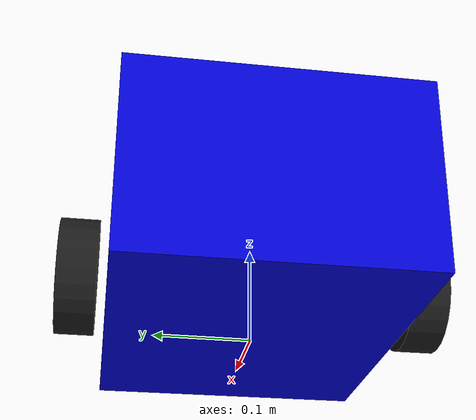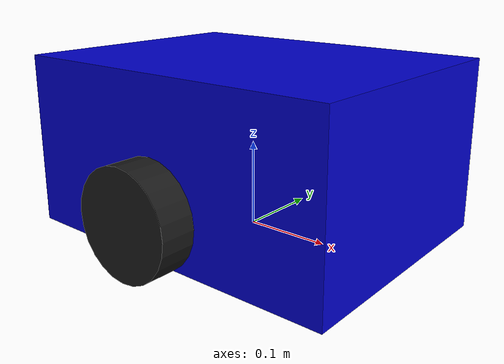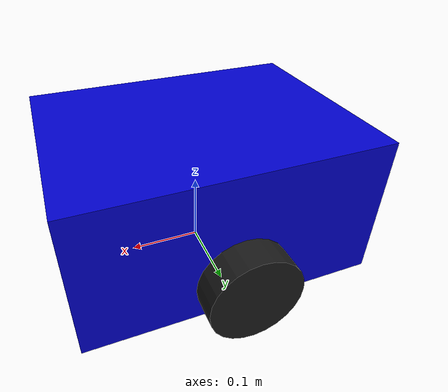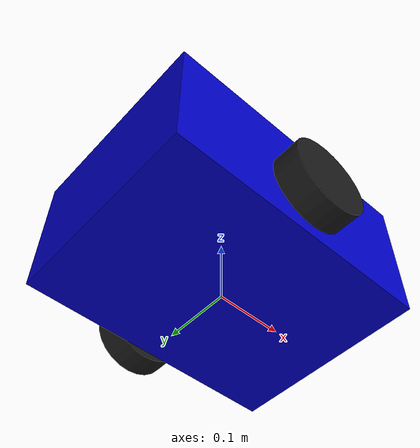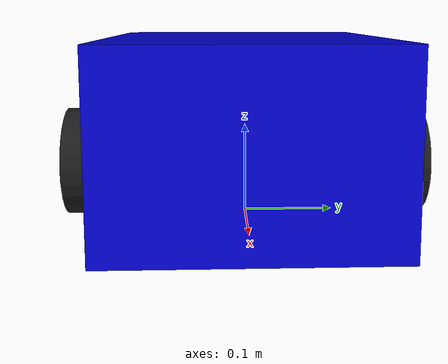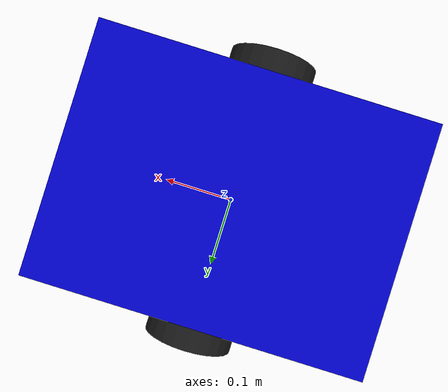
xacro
<?xml version="1.0"?>
<robot xmlns:xacro="http://www.ros.org/wiki/xacro" name="diff_drive_robot">

  <material name="blue">
    <color rgba="0.0 0.0 0.8 1.0"/>
  </material>
  <material name="black">
    <color rgba="0.1 0.1 0.1 1.0"/>
  </material>
  <material name="grey">
    <color rgba="0.6 0.6 0.6 1.0"/>
  </material>

  <!-- 地面投影参考系 -->
  <link name="base_footprint"/>

  <!-- 车体 -->
  <link name="base_link">
    <visual>
      <geometry><box size="0.4 0.3 0.2"/></geometry>
      <material name="blue"/>
    </visual>
    <collision>
      <geometry><box size="0.4 0.3 0.2"/></geometry>
    </collision>
    <inertial>
      <mass value="2.0"/>
      <origin xyz="0 0 0"/>
      <inertia ixx="0.0217" ixy="0" ixz="0" iyy="0.0333" iyz="0" izz="0.0417"/>
    </inertial>
  </link>

  <joint name="base_joint" type="fixed">
    <parent link="base_footprint"/>
    <child link="base_link"/>
    <origin xyz="0 0 0.1"/>
  </joint>

  <!-- 左轮（绕 +Y 转动） -->
  <link name="left_wheel">
    <visual>
      <geometry><cylinder radius="0.06" length="0.04"/></geometry>
      <material name="black"/>
    </visual>
    <collision>
      <geometry><cylinder radius="0.06" length="0.04"/></geometry>
    </collision>
    <inertial>
      <mass value="0.5"/>
      <origin xyz="0 0 0"/>
      <inertia ixx="0.000517" ixy="0" ixz="0" iyy="0.0009" iyz="0" izz="0.000517"/>
    </inertial>
  </link>

  <joint name="left_wheel_joint" type="continuous">
    <parent link="base_link"/>
    <child link="left_wheel"/>
    <origin xyz="0 0.18 -0.04" rpy="-1.5708 0 0"/>
    <axis xyz="0 0 1"/>
  </joint>

  <!-- 右轮（绕 +Y 转动） -->
  <link name="right_wheel">
    <visual>
      <geometry><cylinder radius="0.06" length="0.04"/></geometry>
      <material name="black"/>
    </visual>
    <collision>
      <geometry><cylinder radius="0.06" length="0.04"/></geometry>
    </collision>
    <inertial>
      <mass value="0.5"/>
      <origin xyz="0 0 0"/>
      <inertia ixx="0.000517" ixy="0" ixz="0" iyy="0.0009" iyz="0" izz="0.000517"/>
    </inertial>
  </link>

  <joint name="right_wheel_joint" type="continuous">
    <parent link="base_link"/>
    <child link="right_wheel"/>
    <origin xyz="0 -0.18 -0.04" rpy="-1.5708 0 0"/>
    <axis xyz="0 0 1"/>
  </joint>

  <!-- 万向支撑轮 -->
  <link name="caster">
    <visual>
      <geometry><sphere radius="0.03"/></geometry>
      <material name="grey"/>
    </visual>
    <collision>
      <geometry><sphere radius="0.03"/></geometry>
    </collision>
    <inertial>
      <mass value="0.05"/>
      <origin xyz="0 0 0"/>
      <inertia ixx="0.000018" ixy="0" ixz="0" iyy="0.000018" iyz="0" izz="0.000018"/>
    </inertial>
  </link>

  <joint name="caster_joint" type="fixed">
    <parent link="base_link"/>
    <child link="caster"/>
    <origin xyz="0.14 0 -0.07"/>
  </joint>

  <!-- ros2_control 硬件接口：交给 gz_ros2_control 的 GazeboSystem 管理 -->
  <ros2_control name="GazeboSystem" type="system">
    <hardware>
      <plugin>gz_ros2_control/GazeboSimSystem</plugin>
    </hardware>
    <joint name="left_wheel_joint">
      <command_interface name="velocity">
        <param name="min">-10</param>
        <param name="max">10</param>
      </command_interface>
      <state_interface name="position"/>
      <state_interface name="velocity"/>
    </joint>
    <joint name="right_wheel_joint">
      <command_interface name="velocity">
        <param name="min">-10</param>
        <param name="max">10</param>
      </command_interface>
      <state_interface name="position"/>
      <state_interface name="velocity"/>
    </joint>
  </ros2_control>

  <!-- Gazebo 端插件：加载 ros2_control 控制器配置 -->
  <gazebo>
    <plugin filename="gz_ros2_control-system" name="gz_ros2_control::GazeboSimROS2ControlPlugin">
      <parameters>$(find gazebo_diff_drive_teleop)/config/diff_drive_controller.yaml</parameters>
    </plugin>
  </gazebo>
</robot>
